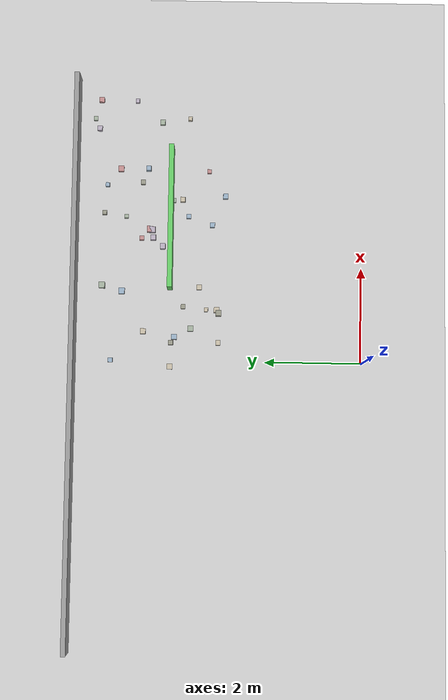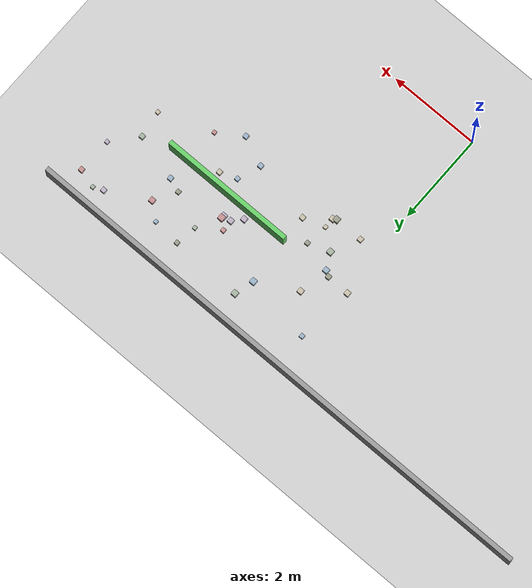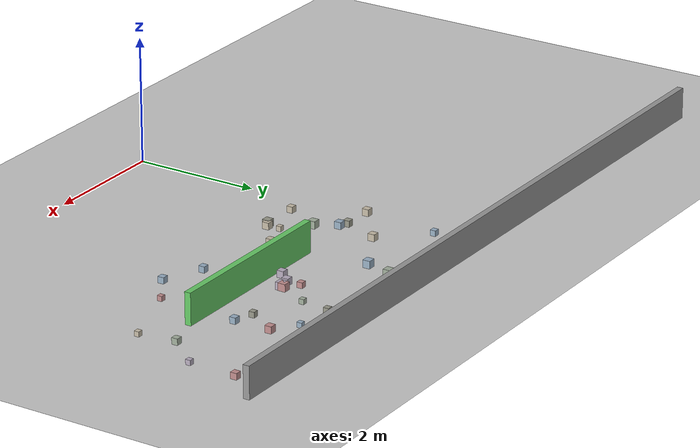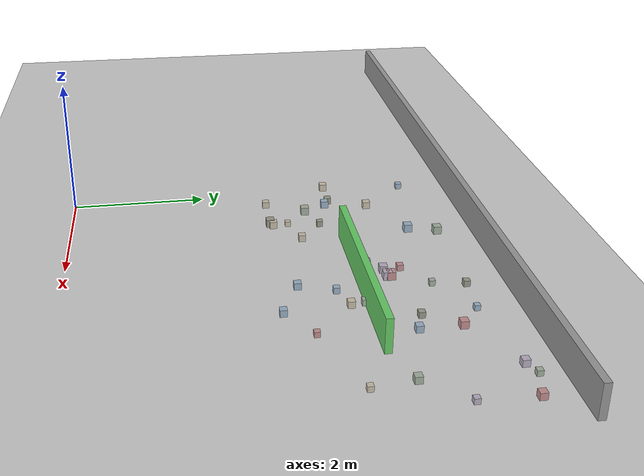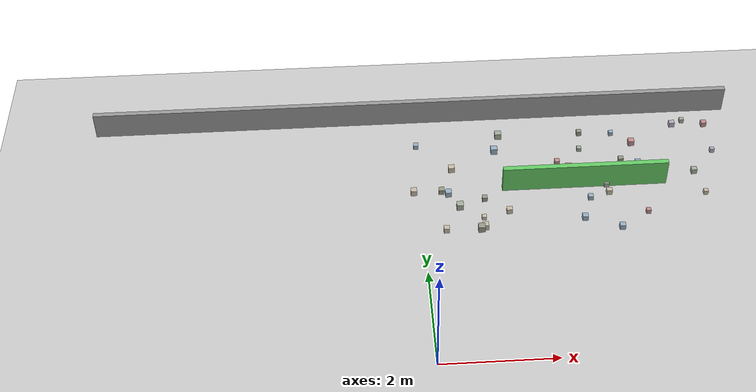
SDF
<sdf version="1.6">
 <world name="small_maze_world">
  <include><uri>model://ground_plane</uri></include>
  <include><uri>model://sun</uri></include>
  <model name="wall_north">
   <static>true</static>
   <pose>0 6 0.25 0 0 0</pose>
   <link name="link">
    <collision name="collision"><geometry><box><size>12 0.1 0.5</size></box></geometry></collision>
    <visual name="visual">
     <geometry><box><size>12 0.1 0.5</size></box></geometry>
     <material><ambient>0.6 0.6 0.6 1</ambient></material>
    </visual>
   </link>
  </model>
  <model name="maze_wall_3">
   <static>true</static>
   <pose>3 4 0.25 0 0 0</pose>
   <link name="link">
    <collision name="collision"><geometry><box><size>3 0.1 0.5</size></box></geometry></collision>
    <visual name="visual">
     <geometry><box><size>3 0.1 0.5</size></box></geometry>
     <material><ambient>0.4 0.8 0.4 1</ambient></material>
    </visual>
   </link>
  </model>
  <model name="box_6">
   <static>false</static>
   <pose>5.54 5.51 0.05 0 0 0</pose>
   <link name="link">
    <inertial>
     <mass>0.2</mass>
     <inertia><ixx>0.001</ixx><iyy>0.001</iyy><izz>0.001</izz><ixy>0</ixy><ixz>0</ixz><iyz>0</iyz></inertia>
    </inertial>
    <collision name="collision"><geometry><box><size>0.1 0.1 0.1</size></box></geometry></collision>
    <visual name="visual">
     <geometry><box><size>0.1 0.1 0.1</size></box></geometry>
     <material><ambient>0.76 0.56 0.56 1</ambient><diffuse>0.76 0.56 0.56 1</diffuse></material>
    </visual>
   </link>
  </model>
  <model name="box_12">
   <static>false</static>
   <pose>2.78 4.44 0.05 0 0 0</pose>
   <link name="link">
    <inertial>
     <mass>0.2</mass>
     <inertia><ixx>0.001</ixx><iyy>0.001</iyy><izz>0.001</izz><ixy>0</ixy><ixz>0</ixz><iyz>0</iyz></inertia>
    </inertial>
    <collision name="collision"><geometry><box><size>0.12 0.12 0.12</size></box></geometry></collision>
    <visual name="visual">
     <geometry><box><size>0.12 0.12 0.12</size></box></geometry>
     <material><ambient>0.76 0.56 0.56 1</ambient><diffuse>0.76 0.56 0.56 1</diffuse></material>
    </visual>
   </link>
  </model>
  <model name="box_14">
   <static>false</static>
   <pose>0.69 3.56 0.05 0 0 0</pose>
   <link name="link">
    <inertial>
     <mass>0.2</mass>
     <inertia><ixx>0.001</ixx><iyy>0.001</iyy><izz>0.001</izz><ixy>0</ixy><ixz>0</ixz><iyz>0</iyz></inertia>
    </inertial>
    <collision name="collision"><geometry><box><size>0.12 0.12 0.12</size></box></geometry></collision>
    <visual name="visual">
     <geometry><box><size>0.12 0.12 0.12</size></box></geometry>
     <material><ambient>0.64 0.69 0.62 1</ambient><diffuse>0.64 0.69 0.62 1</diffuse></material>
    </visual>
   </link>
  </model>
  <model name="box_16">
   <static>false</static>
   <pose>1.46 5.01 0.05 0 0 0</pose>
   <link name="link">
    <inertial>
     <mass>0.2</mass>
     <inertia><ixx>0.001</ixx><iyy>0.001</iyy><izz>0.001</izz><ixy>0</ixy><ixz>0</ixz><iyz>0</iyz></inertia>
    </inertial>
    <collision name="collision"><geometry><box><size>0.12 0.12 0.12</size></box></geometry></collision>
    <visual name="visual">
     <geometry><box><size>0.12 0.12 0.12</size></box></geometry>
     <material><ambient>0.6 0.69 0.77 1</ambient><diffuse>0.6 0.69 0.77 1</diffuse></material>
    </visual>
   </link>
  </model>
  <model name="box_20">
   <static>false</static>
   <pose>4.06 5.07 0.05 0 0 0</pose>
   <link name="link">
    <inertial>
     <mass>0.2</mass>
     <inertia><ixx>0.001</ixx><iyy>0.001</iyy><izz>0.001</izz><ixy>0</ixy><ixz>0</ixz><iyz>0</iyz></inertia>
    </inertial>
    <collision name="collision"><geometry><box><size>0.11 0.11 0.11</size></box></geometry></collision>
    <visual name="visual">
     <geometry><box><size>0.11 0.11 0.11</size></box></geometry>
     <material><ambient>0.76 0.56 0.56 1</ambient><diffuse>0.76 0.56 0.56 1</diffuse></material>
    </visual>
   </link>
  </model>
  <model name="box_23">
   <static>false</static>
   <pose>5.07 4.21 0.05 0 0 0</pose>
   <link name="link">
    <inertial>
     <mass>0.2</mass>
     <inertia><ixx>0.001</ixx><iyy>0.001</iyy><izz>0.001</izz><ixy>0</ixy><ixz>0</ixz><iyz>0</iyz></inertia>
    </inertial>
    <collision name="collision"><geometry><box><size>0.1 0.1 0.1</size></box></geometry></collision>
    <visual name="visual">
     <geometry><box><size>0.1 0.1 0.1</size></box></geometry>
     <material><ambient>0.64 0.69 0.62 1</ambient><diffuse>0.64 0.69 0.62 1</diffuse></material>
    </visual>
   </link>
  </model>
  <model name="box_24">
   <static>false</static>
   <pose>3.05 4.94 0.05 0 0 0</pose>
   <link name="link">
    <inertial>
     <mass>0.2</mass>
     <inertia><ixx>0.001</ixx><iyy>0.001</iyy><izz>0.001</izz><ixy>0</ixy><ixz>0</ixz><iyz>0</iyz></inertia>
    </inertial>
    <collision name="collision"><geometry><box><size>0.08 0.08 0.08</size></box></geometry></collision>
    <visual name="visual">
     <geometry><box><size>0.08 0.08 0.08</size></box></geometry>
     <material><ambient>0.64 0.69 0.62 1</ambient><diffuse>0.64 0.69 0.62 1</diffuse></material>
    </visual>
   </link>
  </model>
  <model name="box_26">
   <static>false</static>
   <pose>1.15 3.72 0.05 0 0 0</pose>
   <link name="link">
    <inertial>
     <mass>0.2</mass>
     <inertia><ixx>0.001</ixx><iyy>0.001</iyy><izz>0.001</izz><ixy>0</ixy><ixz>0</ixz><iyz>0</iyz></inertia>
    </inertial>
    <collision name="collision"><geometry><box><size>0.09 0.09 0.09</size></box></geometry></collision>
    <visual name="visual">
     <geometry><box><size>0.09 0.09 0.09</size></box></geometry>
     <material><ambient>0.6 0.6 0.54 1</ambient><diffuse>0.6 0.6 0.54 1</diffuse></material>
    </visual>
   </link>
  </model>
  <model name="box_28">
   <static>false</static>
   <pose>3.4 3.95 0.05 0 0 0</pose>
   <link name="link">
    <inertial>
     <mass>0.2</mass>
     <inertia><ixx>0.001</ixx><iyy>0.001</iyy><izz>0.001</izz><ixy>0</ixy><ixz>0</ixz><iyz>0</iyz></inertia>
    </inertial>
    <collision name="collision"><geometry><box><size>0.09 0.09 0.09</size></box></geometry></collision>
    <visual name="visual">
     <geometry><box><size>0.09 0.09 0.09</size></box></geometry>
     <material><ambient>0.64 0.69 0.62 1</ambient><diffuse>0.64 0.69 0.62 1</diffuse></material>
    </visual>
   </link>
  </model>
  <model name="box_33">
   <static>false</static>
   <pose>0.4 2.98 0.05 0 0 0</pose>
   <link name="link">
    <inertial>
     <mass>0.2</mass>
     <inertia><ixx>0.001</ixx><iyy>0.001</iyy><izz>0.001</izz><ixy>0</ixy><ixz>0</ixz><iyz>0</iyz></inertia>
    </inertial>
    <collision name="collision"><geometry><box><size>0.1 0.1 0.1</size></box></geometry></collision>
    <visual name="visual">
     <geometry><box><size>0.1 0.1 0.1</size></box></geometry>
     <material><ambient>0.78 0.74 0.66 1</ambient><diffuse>0.78 0.74 0.66 1</diffuse></material>
    </visual>
   </link>
  </model>
  <model name="box_38">
   <static>false</static>
   <pose>1.58 5.43 0.05 0 0 0</pose>
   <link name="link">
    <inertial>
     <mass>0.2</mass>
     <inertia><ixx>0.001</ixx><iyy>0.001</iyy><izz>0.001</izz><ixy>0</ixy><ixz>0</ixz><iyz>0</iyz></inertia>
    </inertial>
    <collision name="collision"><geometry><box><size>0.12 0.12 0.12</size></box></geometry></collision>
    <visual name="visual">
     <geometry><box><size>0.12 0.12 0.12</size></box></geometry>
     <material><ambient>0.64 0.69 0.62 1</ambient><diffuse>0.64 0.69 0.62 1</diffuse></material>
    </visual>
   </link>
  </model>
  <model name="box_40">
   <static>false</static>
   <pose>2.59 4.61 0.05 0 0 0</pose>
   <link name="link">
    <inertial>
     <mass>0.2</mass>
     <inertia><ixx>0.001</ixx><iyy>0.001</iyy><izz>0.001</izz><ixy>0</ixy><ixz>0</ixz><iyz>0</iyz></inertia>
    </inertial>
    <collision name="collision"><geometry><box><size>0.09 0.09 0.09</size></box></geometry></collision>
    <visual name="visual">
     <geometry><box><size>0.09 0.09 0.09</size></box></geometry>
     <material><ambient>0.76 0.56 0.56 1</ambient><diffuse>0.76 0.56 0.56 1</diffuse></material>
    </visual>
   </link>
  </model>
  <model name="box_45">
   <static>false</static>
   <pose>0.01 5.22 0.05 0 0 0</pose>
   <link name="link">
    <inertial>
     <mass>0.2</mass>
     <inertia><ixx>0.001</ixx><iyy>0.001</iyy><izz>0.001</izz><ixy>0</ixy><ixz>0</ixz><iyz>0</iyz></inertia>
    </inertial>
    <collision name="collision"><geometry><box><size>0.09 0.09 0.09</size></box></geometry></collision>
    <visual name="visual">
     <geometry><box><size>0.09 0.09 0.09</size></box></geometry>
     <material><ambient>0.6 0.69 0.77 1</ambient><diffuse>0.6 0.69 0.77 1</diffuse></material>
    </visual>
   </link>
  </model>
  <model name="box_49">
   <static>false</static>
   <pose>3.06 3.63 0.05 0 0 0</pose>
   <link name="link">
    <inertial>
     <mass>0.2</mass>
     <inertia><ixx>0.001</ixx><iyy>0.001</iyy><izz>0.001</izz><ixy>0</ixy><ixz>0</ixz><iyz>0</iyz></inertia>
    </inertial>
    <collision name="collision"><geometry><box><size>0.09 0.09 0.09</size></box></geometry></collision>
    <visual name="visual">
     <geometry><box><size>0.09 0.09 0.09</size></box></geometry>
     <material><ambient>0.6 0.69 0.77 1</ambient><diffuse>0.6 0.69 0.77 1</diffuse></material>
    </visual>
   </link>
  </model>
  <model name="box_51">
   <static>false</static>
   <pose>2.42 4.17 0.05 0 0 0</pose>
   <link name="link">
    <inertial>
     <mass>0.2</mass>
     <inertia><ixx>0.001</ixx><iyy>0.001</iyy><izz>0.001</izz><ixy>0</ixy><ixz>0</ixz><iyz>0</iyz></inertia>
    </inertial>
    <collision name="collision"><geometry><box><size>0.11 0.11 0.11</size></box></geometry></collision>
    <visual name="visual">
     <geometry><box><size>0.11 0.11 0.11</size></box></geometry>
     <material><ambient>0.72 0.68 0.75 1</ambient><diffuse>0.72 0.68 0.75 1</diffuse></material>
    </visual>
   </link>
  </model>
  <model name="box_60">
   <static>false</static>
   <pose>5.53 4.75 0.05 0 0 0</pose>
   <link name="link">
    <inertial>
     <mass>0.2</mass>
     <inertia><ixx>0.001</ixx><iyy>0.001</iyy><izz>0.001</izz><ixy>0</ixy><ixz>0</ixz><iyz>0</iyz></inertia>
    </inertial>
    <collision name="collision"><geometry><box><size>0.08 0.08 0.08</size></box></geometry></collision>
    <visual name="visual">
     <geometry><box><size>0.08 0.08 0.08</size></box></geometry>
     <material><ambient>0.72 0.68 0.75 1</ambient><diffuse>0.72 0.68 0.75 1</diffuse></material>
    </visual>
   </link>
  </model>
  <model name="box_63">
   <static>false</static>
   <pose>1.09 3.02 0.05 0 0 0</pose>
   <link name="link">
    <inertial>
     <mass>0.2</mass>
     <inertia><ixx>0.001</ixx><iyy>0.001</iyy><izz>0.001</izz><ixy>0</ixy><ixz>0</ixz><iyz>0</iyz></inertia>
    </inertial>
    <collision name="collision"><geometry><box><size>0.11 0.11 0.11</size></box></geometry></collision>
    <visual name="visual">
     <geometry><box><size>0.11 0.11 0.11</size></box></geometry>
     <material><ambient>0.78 0.74 0.66 1</ambient><diffuse>0.78 0.74 0.66 1</diffuse></material>
    </visual>
   </link>
  </model>
  <model name="box_64">
   <static>false</static>
   <pose>1.56 3.39 0.05 0 0 0</pose>
   <link name="link">
    <inertial>
     <mass>0.2</mass>
     <inertia><ixx>0.001</ixx><iyy>0.001</iyy><izz>0.001</izz><ixy>0</ixy><ixz>0</ixz><iyz>0</iyz></inertia>
    </inertial>
    <collision name="collision"><geometry><box><size>0.1 0.1 0.1</size></box></geometry></collision>
    <visual name="visual">
     <geometry><box><size>0.1 0.1 0.1</size></box></geometry>
     <material><ambient>0.78 0.74 0.66 1</ambient><diffuse>0.78 0.74 0.66 1</diffuse></material>
    </visual>
   </link>
  </model>
  <model name="box_68">
   <static>false</static>
   <pose>4.08 4.49 0.05 0 0 0</pose>
   <link name="link">
    <inertial>
     <mass>0.2</mass>
     <inertia><ixx>0.001</ixx><iyy>0.001</iyy><izz>0.001</izz><ixy>0</ixy><ixz>0</ixz><iyz>0</iyz></inertia>
    </inertial>
    <collision name="collision"><geometry><box><size>0.1 0.1 0.1</size></box></geometry></collision>
    <visual name="visual">
     <geometry><box><size>0.1 0.1 0.1</size></box></geometry>
     <material><ambient>0.6 0.69 0.77 1</ambient><diffuse>0.6 0.69 0.77 1</diffuse></material>
    </visual>
   </link>
  </model>
  <model name="box_76">
   <static>false</static>
   <pose>4.03 3.21 0.05 0 0 0</pose>
   <link name="link">
    <inertial>
     <mass>0.2</mass>
     <inertia><ixx>0.001</ixx><iyy>0.001</iyy><izz>0.001</izz><ixy>0</ixy><ixz>0</ixz><iyz>0</iyz></inertia>
    </inertial>
    <collision name="collision"><geometry><box><size>0.08 0.08 0.08</size></box></geometry></collision>
    <visual name="visual">
     <geometry><box><size>0.08 0.08 0.08</size></box></geometry>
     <material><ambient>0.76 0.56 0.56 1</ambient><diffuse>0.76 0.56 0.56 1</diffuse></material>
    </visual>
   </link>
  </model>
  <model name="box_87">
   <static>false</static>
   <pose>2.88 3.13 0.05 0 0 0</pose>
   <link name="link">
    <inertial>
     <mass>0.2</mass>
     <inertia><ixx>0.001</ixx><iyy>0.001</iyy><izz>0.001</izz><ixy>0</ixy><ixz>0</ixz><iyz>0</iyz></inertia>
    </inertial>
    <collision name="collision"><geometry><box><size>0.1 0.1 0.1</size></box></geometry></collision>
    <visual name="visual">
     <geometry><box><size>0.1 0.1 0.1</size></box></geometry>
     <material><ambient>0.6 0.69 0.77 1</ambient><diffuse>0.6 0.69 0.77 1</diffuse></material>
    </visual>
   </link>
  </model>
  <model name="box_93">
   <static>false</static>
   <pose>0.51 3.9 0.05 0 0 0</pose>
   <link name="link">
    <inertial>
     <mass>0.2</mass>
     <inertia><ixx>0.001</ixx><iyy>0.001</iyy><izz>0.001</izz><ixy>0</ixy><ixz>0</ixz><iyz>0</iyz></inertia>
    </inertial>
    <collision name="collision"><geometry><box><size>0.11 0.11 0.11</size></box></geometry></collision>
    <visual name="visual">
     <geometry><box><size>0.11 0.11 0.11</size></box></geometry>
     <material><ambient>0.6 0.69 0.77 1</ambient><diffuse>0.6 0.69 0.77 1</diffuse></material>
    </visual>
   </link>
  </model>
  <model name="box_99">
   <static>false</static>
   <pose>2.77 4.39 0.05 0 0 0</pose>
   <link name="link">
    <inertial>
     <mass>0.2</mass>
     <inertia><ixx>0.001</ixx><iyy>0.001</iyy><izz>0.001</izz><ixy>0</ixy><ixz>0</ixz><iyz>0</iyz></inertia>
    </inertial>
    <collision name="collision"><geometry><box><size>0.12 0.12 0.12</size></box></geometry></collision>
    <visual name="visual">
     <geometry><box><size>0.12 0.12 0.12</size></box></geometry>
     <material><ambient>0.72 0.68 0.75 1</ambient><diffuse>0.72 0.68 0.75 1</diffuse></material>
    </visual>
   </link>
  </model>
  <model name="box_109">
   <static>false</static>
   <pose>0.39 3.97 0.05 0 0 0</pose>
   <link name="link">
    <inertial>
     <mass>0.2</mass>
     <inertia><ixx>0.001</ixx><iyy>0.001</iyy><izz>0.001</izz><ixy>0</ixy><ixz>0</ixz><iyz>0</iyz></inertia>
    </inertial>
    <collision name="collision"><geometry><box><size>0.1 0.1 0.1</size></box></geometry></collision>
    <visual name="visual">
     <geometry><box><size>0.1 0.1 0.1</size></box></geometry>
     <material><ambient>0.6 0.6 0.54 1</ambient><diffuse>0.6 0.6 0.54 1</diffuse></material>
    </visual>
   </link>
  </model>
  <model name="box_111">
   <static>false</static>
   <pose>0.62 4.55 0.05 0 0 0</pose>
   <link name="link">
    <inertial>
     <mass>0.2</mass>
     <inertia><ixx>0.001</ixx><iyy>0.001</iyy><izz>0.001</izz><ixy>0</ixy><ixz>0</ixz><iyz>0</iyz></inertia>
    </inertial>
    <collision name="collision"><geometry><box><size>0.11 0.11 0.11</size></box></geometry></collision>
    <visual name="visual">
     <geometry><box><size>0.11 0.11 0.11</size></box></geometry>
     <material><ambient>0.78 0.74 0.66 1</ambient><diffuse>0.78 0.74 0.66 1</diffuse></material>
    </visual>
   </link>
  </model>
  <model name="box_112">
   <static>false</static>
   <pose>1.02 2.98 0.05 0 0 0</pose>
   <link name="link">
    <inertial>
     <mass>0.2</mass>
     <inertia><ixx>0.001</ixx><iyy>0.001</iyy><izz>0.001</izz><ixy>0</ixy><ixz>0</ixz><iyz>0</iyz></inertia>
    </inertial>
    <collision name="collision"><geometry><box><size>0.12 0.12 0.12</size></box></geometry></collision>
    <visual name="visual">
     <geometry><box><size>0.12 0.12 0.12</size></box></geometry>
     <material><ambient>0.6 0.6 0.54 1</ambient><diffuse>0.6 0.6 0.54 1</diffuse></material>
    </visual>
   </link>
  </model>
  <model name="box_113">
   <static>false</static>
   <pose>3.42 3.76 0.05 0 0 0</pose>
   <link name="link">
    <inertial>
     <mass>0.2</mass>
     <inertia><ixx>0.001</ixx><iyy>0.001</iyy><izz>0.001</izz><ixy>0</ixy><ixz>0</ixz><iyz>0</iyz></inertia>
    </inertial>
    <collision name="collision"><geometry><box><size>0.1 0.1 0.1</size></box></geometry></collision>
    <visual name="visual">
     <geometry><box><size>0.1 0.1 0.1</size></box></geometry>
     <material><ambient>0.78 0.74 0.66 1</ambient><diffuse>0.78 0.74 0.66 1</diffuse></material>
    </visual>
   </link>
  </model>
  <model name="box_114">
   <static>false</static>
   <pose>-0.11 3.98 0.05 0 0 0</pose>
   <link name="link">
    <inertial>
     <mass>0.2</mass>
     <inertia><ixx>0.001</ixx><iyy>0.001</iyy><izz>0.001</izz><ixy>0</ixy><ixz>0</ixz><iyz>0</iyz></inertia>
    </inertial>
    <collision name="collision"><geometry><box><size>0.11 0.11 0.11</size></box></geometry></collision>
    <visual name="visual">
     <geometry><box><size>0.11 0.11 0.11</size></box></geometry>
     <material><ambient>0.78 0.74 0.66 1</ambient><diffuse>0.78 0.74 0.66 1</diffuse></material>
    </visual>
   </link>
  </model>
  <model name="box_117">
   <static>false</static>
   <pose>5.14 5.63 0.05 0 0 0</pose>
   <link name="link">
    <inertial>
     <mass>0.2</mass>
     <inertia><ixx>0.001</ixx><iyy>0.001</iyy><izz>0.001</izz><ixy>0</ixy><ixz>0</ixz><iyz>0</iyz></inertia>
    </inertial>
    <collision name="collision"><geometry><box><size>0.08 0.08 0.08</size></box></geometry></collision>
    <visual name="visual">
     <geometry><box><size>0.08 0.08 0.08</size></box></geometry>
     <material><ambient>0.64 0.69 0.62 1</ambient><diffuse>0.64 0.69 0.62 1</diffuse></material>
    </visual>
   </link>
  </model>
  <model name="box_118">
   <static>false</static>
   <pose>5.16 3.63 0.05 0 0 0</pose>
   <link name="link">
    <inertial>
     <mass>0.2</mass>
     <inertia><ixx>0.001</ixx><iyy>0.001</iyy><izz>0.001</izz><ixy>0</ixy><ixz>0</ixz><iyz>0</iyz></inertia>
    </inertial>
    <collision name="collision"><geometry><box><size>0.08 0.08 0.08</size></box></geometry></collision>
    <visual name="visual">
     <geometry><box><size>0.08 0.08 0.08</size></box></geometry>
     <material><ambient>0.78 0.74 0.66 1</ambient><diffuse>0.78 0.74 0.66 1</diffuse></material>
    </visual>
   </link>
  </model>
  <model name="box_119">
   <static>false</static>
   <pose>2.6 4.37 0.05 0 0 0</pose>
   <link name="link">
    <inertial>
     <mass>0.2</mass>
     <inertia><ixx>0.001</ixx><iyy>0.001</iyy><izz>0.001</izz><ixy>0</ixy><ixz>0</ixz><iyz>0</iyz></inertia>
    </inertial>
    <collision name="collision"><geometry><box><size>0.11 0.11 0.11</size></box></geometry></collision>
    <visual name="visual">
     <geometry><box><size>0.11 0.11 0.11</size></box></geometry>
     <material><ambient>0.72 0.68 0.75 1</ambient><diffuse>0.72 0.68 0.75 1</diffuse></material>
    </visual>
   </link>
  </model>
  <model name="box_122">
   <static>false</static>
   <pose>4.93 5.54 0.05 0 0 0</pose>
   <link name="link">
    <inertial>
     <mass>0.2</mass>
     <inertia><ixx>0.001</ixx><iyy>0.001</iyy><izz>0.001</izz><ixy>0</ixy><ixz>0</ixz><iyz>0</iyz></inertia>
    </inertial>
    <collision name="collision"><geometry><box><size>0.1 0.1 0.1</size></box></geometry></collision>
    <visual name="visual">
     <geometry><box><size>0.1 0.1 0.1</size></box></geometry>
     <material><ambient>0.72 0.68 0.75 1</ambient><diffuse>0.72 0.68 0.75 1</diffuse></material>
    </visual>
   </link>
  </model>
  <model name="box_127">
   <static>false</static>
   <pose>3.5 2.86 0.05 0 0 0</pose>
   <link name="link">
    <inertial>
     <mass>0.2</mass>
     <inertia><ixx>0.001</ixx><iyy>0.001</iyy><izz>0.001</izz><ixy>0</ixy><ixz>0</ixz><iyz>0</iyz></inertia>
    </inertial>
    <collision name="collision"><geometry><box><size>0.1 0.1 0.1</size></box></geometry></collision>
    <visual name="visual">
     <geometry><box><size>0.1 0.1 0.1</size></box></geometry>
     <material><ambient>0.6 0.69 0.77 1</ambient><diffuse>0.6 0.69 0.77 1</diffuse></material>
    </visual>
   </link>
  </model>
  <model name="box_128">
   <static>false</static>
   <pose>3.12 5.4 0.05 0 0 0</pose>
   <link name="link">
    <inertial>
     <mass>0.2</mass>
     <inertia><ixx>0.001</ixx><iyy>0.001</iyy><izz>0.001</izz><ixy>0</ixy><ixz>0</ixz><iyz>0</iyz></inertia>
    </inertial>
    <collision name="collision"><geometry><box><size>0.09 0.09 0.09</size></box></geometry></collision>
    <visual name="visual">
     <geometry><box><size>0.09 0.09 0.09</size></box></geometry>
     <material><ambient>0.6 0.6 0.54 1</ambient><diffuse>0.6 0.6 0.54 1</diffuse></material>
    </visual>
   </link>
  </model>
  <model name="box_134">
   <static>false</static>
   <pose>3.72 5.35 0.05 0 0 0</pose>
   <link name="link">
    <inertial>
     <mass>0.2</mass>
     <inertia><ixx>0.001</ixx><iyy>0.001</iyy><izz>0.001</izz><ixy>0</ixy><ixz>0</ixz><iyz>0</iyz></inertia>
    </inertial>
    <collision name="collision"><geometry><box><size>0.08 0.08 0.08</size></box></geometry></collision>
    <visual name="visual">
     <geometry><box><size>0.08 0.08 0.08</size></box></geometry>
     <material><ambient>0.6 0.69 0.77 1</ambient><diffuse>0.6 0.69 0.77 1</diffuse></material>
    </visual>
   </link>
  </model>
  <model name="box_135">
   <static>false</static>
   <pose>3.78 4.6 0.05 0 0 0</pose>
   <link name="link">
    <inertial>
     <mass>0.2</mass>
     <inertia><ixx>0.001</ixx><iyy>0.001</iyy><izz>0.001</izz><ixy>0</ixy><ixz>0</ixz><iyz>0</iyz></inertia>
    </inertial>
    <collision name="collision"><geometry><box><size>0.09 0.09 0.09</size></box></geometry></collision>
    <visual name="visual">
     <geometry><box><size>0.09 0.09 0.09</size></box></geometry>
     <material><ambient>0.6 0.6 0.54 1</ambient><diffuse>0.6 0.6 0.54 1</diffuse></material>
    </visual>
   </link>
  </model>
  <model name="box_136">
   <static>false</static>
   <pose>1.09 3.24 0.05 0 0 0</pose>
   <link name="link">
    <inertial>
     <mass>0.2</mass>
     <inertia><ixx>0.001</ixx><iyy>0.001</iyy><izz>0.001</izz><ixy>0</ixy><ixz>0</ixz><iyz>0</iyz></inertia>
    </inertial>
    <collision name="collision"><geometry><box><size>0.08 0.08 0.08</size></box></geometry></collision>
    <visual name="visual">
     <geometry><box><size>0.08 0.08 0.08</size></box></geometry>
     <material><ambient>0.78 0.74 0.66 1</ambient><diffuse>0.78 0.74 0.66 1</diffuse></material>
    </visual>
   </link>
  </model>
 </world>
</sdf>
